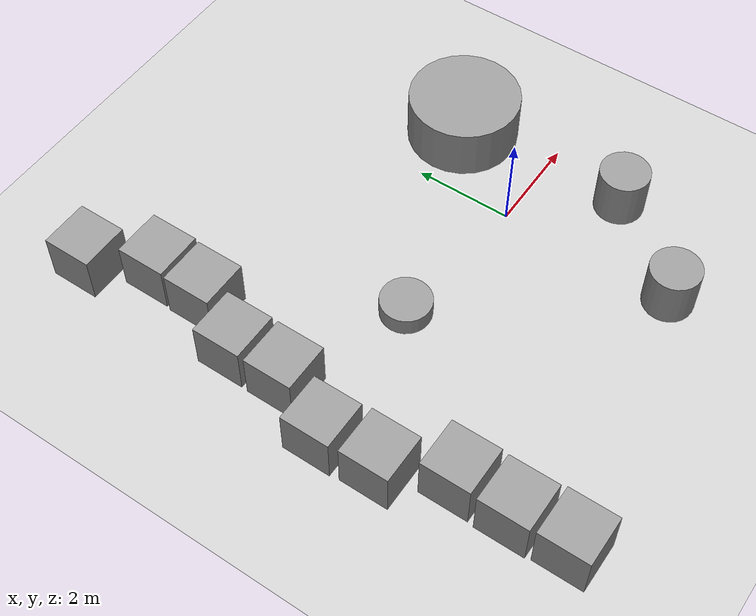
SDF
<sdf version="1.6">
 <world name="default">
  <light name="sun" type="directional">
   <pose>0 0 10 0 -0 0</pose>
   <diffuse>0.8 0.8 0.8 1</diffuse>
   <specular>0.1 0.1 0.1 1</specular>
   <attenuation>
    <range>1000</range>
    <constant>0.9</constant>
    <linear>0.01</linear>
    <quadratic>0.001</quadratic>
   </attenuation>
   <direction>-0.5 0.5 -1</direction>
  </light>
  <model name="ground_plane">
   <static>1</static>
   <link name="link">
    <collision name="collision">
     <geometry><plane><normal>0 0 1</normal><size>100 100</size></plane></geometry>
     <surface><friction><ode><mu>100</mu><mu2>50</mu2></ode></friction></surface>
    </collision>
    <visual name="visual">
     <cast_shadows>0</cast_shadows>
     <geometry><plane><normal>0 0 1</normal><size>100 100</size></plane></geometry>
     <material>
      <script><uri>file://media/materials/scripts/gazebo.material</uri><name>Gazebo/Grey</name></script>
     </material>
    </visual>
   </link>
  </model>
  <gravity>0 0 -9.8</gravity>
  <magnetic_field>6e-06 2.3e-05 -4.2e-05</magnetic_field>
  <atmosphere type="adiabatic"/>
  <physics name="default_physics" default="0" type="ode">
   <max_step_size>0.001</max_step_size>
   <real_time_factor>1</real_time_factor>
   <real_time_update_rate>1000</real_time_update_rate>
  </physics>
  <scene><ambient>0.4 0.4 0.4 1</ambient><background>0.7 0.7 0.7 1</background><shadows>1</shadows></scene>
  <spherical_coordinates>
   <surface_model>EARTH_WGS84</surface_model>
   <latitude_deg>0</latitude_deg>
   <longitude_deg>0</longitude_deg>
   <elevation>0</elevation>
   <heading_deg>0</heading_deg>
  </spherical_coordinates>
  <model name="unit_cylinder_0">
   <pose>1.50592 -1.65971 0.499994 -2e-06 -1e-06 0</pose>
   <link name="link">
    <inertial>
     <mass>1</mass>
     <inertia><ixx>0.145833</ixx><ixy>0</ixy><ixz>0</ixz><iyy>0.145833</iyy><iyz>0</iyz><izz>0.125</izz></inertia>
    </inertial>
    <collision name="collision">
     <geometry><cylinder><radius>0.5</radius><length>1</length></cylinder></geometry>
    </collision>
    <visual name="visual">
     <geometry><cylinder><radius>0.5</radius><length>1</length></cylinder></geometry>
     <material>
      <script><name>Gazebo/Grey</name><uri>file://media/materials/scripts/gazebo.material</uri></script>
     </material>
    </visual>
   </link>
  </model>
  <model name="unit_cylinder_1">
   <pose>1.41214 1.91088 0.454847 -0 -0 -2e-06</pose>
   <link name="link">
    <inertial>
     <mass>1</mass>
     <inertia><ixx>0.145833</ixx><ixy>0</ixy><ixz>0</ixz><iyy>0.145833</iyy><iyz>0</iyz><izz>0.125</izz></inertia>
    </inertial>
    <collision name="collision">
     <geometry><cylinder><radius>1.12984</radius><length>1.20839</length></cylinder></geometry>
    </collision>
    <visual name="visual">
     <geometry><cylinder><radius>1.12984</radius><length>1.20839</length></cylinder></geometry>
     <material>
      <script><name>Gazebo/Grey</name><uri>file://media/materials/scripts/gazebo.material</uri></script>
     </material>
    </visual>
   </link>
  </model>
  <model name="unit_cylinder_2">
   <pose>-3.18051 0.246522 0.499997 3e-06 1e-06 -0</pose>
   <link name="link">
    <inertial>
     <mass>1</mass>
     <inertia><ixx>0.145833</ixx><ixy>0</ixy><ixz>0</ixz><iyy>0.145833</iyy><iyz>0</iyz><izz>0.125</izz></inertia>
    </inertial>
    <collision name="collision">
     <geometry><cylinder><radius>0.5</radius><length>0.383294</length></cylinder></geometry>
    </collision>
    <visual name="visual">
     <geometry><cylinder><radius>0.5</radius><length>0.383294</length></cylinder></geometry>
     <material>
      <script><name>Gazebo/Grey</name><uri>file://media/materials/scripts/gazebo.material</uri></script>
     </material>
    </visual>
   </link>
  </model>
  <model name="unit_cylinder_3">
   <pose>-0.023501 -3.52909 0.499997 3e-06 1e-06 -0</pose>
   <link name="link">
    <inertial>
     <mass>1</mass>
     <inertia><ixx>0.145833</ixx><ixy>0</ixy><ixz>0</ixz><iyy>0.145833</iyy><iyz>0</iyz><izz>0.125</izz></inertia>
    </inertial>
    <collision name="collision">
     <geometry><cylinder><radius>0.5</radius><length>1</length></cylinder></geometry>
    </collision>
    <visual name="visual">
     <geometry><cylinder><radius>0.5</radius><length>1</length></cylinder></geometry>
     <material>
      <script><name>Gazebo/Grey</name><uri>file://media/materials/scripts/gazebo.material</uri></script>
     </material>
    </visual>
   </link>
  </model>
  <audio><device>default</device></audio>
  <model name="unit_box_0_clone">
   <pose>-5.52012 5.83657 0.499995 0 1e-05 0</pose>
   <link name="link">
    <inertial>
     <mass>1</mass>
     <inertia>
      <ixx>0.166667</ixx>
      <ixy>0</ixy>
      <ixz>0</ixz>
      <iyy>0.166667</iyy>
      <iyz>0</iyz>
      <izz>0.166667</izz>
     </inertia>
    </inertial>
    <collision name="collision"><geometry><box><size>0.999999 0.999996 1</size></box></geometry></collision>
    <visual name="visual">
     <geometry><box><size>0.999999 0.999996 1</size></box></geometry>
     <material>
      <script><name>Gazebo/Grey</name><uri>file://media/materials/scripts/gazebo.material</uri></script>
     </material>
    </visual>
   </link>
  </model>
  <model name="unit_box_0_clone_clone">
   <pose>-4.922 4.58737 0.499995 0 1e-05 0</pose>
   <link name="link">
    <inertial>
     <mass>1</mass>
     <inertia>
      <ixx>0.166667</ixx>
      <ixy>0</ixy>
      <ixz>0</ixz>
      <iyy>0.166667</iyy>
      <iyz>0</iyz>
      <izz>0.166667</izz>
     </inertia>
    </inertial>
    <collision name="collision"><geometry><box><size>0.999999 0.999996 1</size></box></geometry></collision>
    <visual name="visual">
     <geometry><box><size>0.999999 0.999996 1</size></box></geometry>
     <material>
      <script><name>Gazebo/Grey</name><uri>file://media/materials/scripts/gazebo.material</uri></script>
     </material>
    </visual>
   </link>
  </model>
  <model name="unit_box_0_clone_clone_0">
   <pose>-4.95343 3.49771 0.499989 0 1e-05 0</pose>
   <link name="link">
    <inertial>
     <mass>1</mass>
     <inertia>
      <ixx>0.166667</ixx>
      <ixy>0</ixy>
      <ixz>0</ixz>
      <iyy>0.166667</iyy>
      <iyz>0</iyz>
      <izz>0.166667</izz>
     </inertia>
    </inertial>
    <collision name="collision"><geometry><box><size>0.999999 0.999996 1</size></box></geometry></collision>
    <visual name="visual">
     <geometry><box><size>0.999999 0.999996 1</size></box></geometry>
     <material>
      <script><name>Gazebo/Grey</name><uri>file://media/materials/scripts/gazebo.material</uri></script>
     </material>
    </visual>
   </link>
  </model>
  <model name="unit_box_0_clone_clone_1">
   <pose>-5.53539 2.35628 0.499995 0 1e-05 0</pose>
   <link name="link">
    <inertial>
     <mass>1</mass>
     <inertia>
      <ixx>0.166667</ixx>
      <ixy>0</ixy>
      <ixz>0</ixz>
      <iyy>0.166667</iyy>
      <iyz>0</iyz>
      <izz>0.166667</izz>
     </inertia>
    </inertial>
    <collision name="collision"><geometry><box><size>0.999999 0.999996 1</size></box></geometry></collision>
    <visual name="visual">
     <geometry><box><size>0.999999 0.999996 1</size></box></geometry>
     <material>
      <script><name>Gazebo/Grey</name><uri>file://media/materials/scripts/gazebo.material</uri></script>
     </material>
    </visual>
   </link>
  </model>
  <model name="unit_box_0_clone_clone_2">
   <pose>-5.54449 1.2297 0.499995 0 1e-05 0</pose>
   <link name="link">
    <inertial>
     <mass>1</mass>
     <inertia>
      <ixx>0.166667</ixx>
      <ixy>0</ixy>
      <ixz>0</ixz>
      <iyy>0.166667</iyy>
      <iyz>0</iyz>
      <izz>0.166667</izz>
     </inertia>
    </inertial>
    <collision name="collision"><geometry><box><size>0.999999 0.999996 1</size></box></geometry></collision>
    <visual name="visual">
     <geometry><box><size>0.999999 0.999996 1</size></box></geometry>
     <material>
      <script><name>Gazebo/Grey</name><uri>file://media/materials/scripts/gazebo.material</uri></script>
     </material>
    </visual>
   </link>
  </model>
  <model name="unit_box_0_clone_clone_3">
   <pose>-6.10049 0.026772 0.500001 0 1e-05 0</pose>
   <link name="link">
    <inertial>
     <mass>1</mass>
     <inertia>
      <ixx>0.166667</ixx>
      <ixy>0</ixy>
      <ixz>0</ixz>
      <iyy>0.166667</iyy>
      <iyz>0</iyz>
      <izz>0.166667</izz>
     </inertia>
    </inertial>
    <collision name="collision"><geometry><box><size>0.999999 0.999996 1</size></box></geometry></collision>
    <visual name="visual">
     <geometry><box><size>0.999999 0.999996 1</size></box></geometry>
     <material>
      <script><name>Gazebo/Grey</name><uri>file://media/materials/scripts/gazebo.material</uri></script>
     </material>
    </visual>
   </link>
  </model>
  <model name="unit_box_0_clone_clone_4">
   <pose>-6.06448 -1.14881 0.500001 0 1e-05 0</pose>
   <link name="link">
    <inertial>
     <mass>1</mass>
     <inertia>
      <ixx>0.166667</ixx>
      <ixy>0</ixy>
      <ixz>0</ixz>
      <iyy>0.166667</iyy>
      <iyz>0</iyz>
      <izz>0.166667</izz>
     </inertia>
    </inertial>
    <collision name="collision"><geometry><box><size>0.999999 0.999996 1</size></box></geometry></collision>
    <visual name="visual">
     <geometry><box><size>0.999999 0.999996 1</size></box></geometry>
     <material>
      <script><name>Gazebo/Grey</name><uri>file://media/materials/scripts/gazebo.material</uri></script>
     </material>
    </visual>
   </link>
  </model>
  <model name="unit_box_0_clone_clone_5">
   <pose>-5.49445 -2.38127 0.499995 0 1e-05 0</pose>
   <link name="link">
    <inertial>
     <mass>1</mass>
     <inertia>
      <ixx>0.166667</ixx>
      <ixy>0</ixy>
      <ixz>0</ixz>
      <iyy>0.166667</iyy>
      <iyz>0</iyz>
      <izz>0.166667</izz>
     </inertia>
    </inertial>
    <collision name="collision"><geometry><box><size>0.999999 0.999996 1</size></box></geometry></collision>
    <visual name="visual">
     <geometry><box><size>0.999999 0.999996 1</size></box></geometry>
     <material>
      <script><name>Gazebo/Grey</name><uri>file://media/materials/scripts/gazebo.material</uri></script>
     </material>
    </visual>
   </link>
  </model>
  <model name="unit_box_0_clone_clone_6">
   <pose>-5.52068 -3.5053 0.499995 0 1e-05 0</pose>
   <link name="link">
    <inertial>
     <mass>1</mass>
     <inertia>
      <ixx>0.166667</ixx>
      <ixy>0</ixy>
      <ixz>0</ixz>
      <iyy>0.166667</iyy>
      <iyz>0</iyz>
      <izz>0.166667</izz>
     </inertia>
    </inertial>
    <collision name="collision"><geometry><box><size>0.999999 0.999996 1</size></box></geometry></collision>
    <visual name="visual">
     <geometry><box><size>0.999999 0.999996 1</size></box></geometry>
     <material>
      <script><name>Gazebo/Grey</name><uri>file://media/materials/scripts/gazebo.material</uri></script>
     </material>
    </visual>
   </link>
  </model>
  <model name="unit_box_0_clone_clone_7">
   <pose>-5.48542 -4.60149 0.499995 0 1e-05 0</pose>
   <link name="link">
    <inertial>
     <mass>1</mass>
     <inertia>
      <ixx>0.166667</ixx>
      <ixy>0</ixy>
      <ixz>0</ixz>
      <iyy>0.166667</iyy>
      <iyz>0</iyz>
      <izz>0.166667</izz>
     </inertia>
    </inertial>
    <collision name="collision"><geometry><box><size>0.999999 0.999996 1</size></box></geometry></collision>
    <visual name="visual">
     <geometry><box><size>0.999999 0.999996 1</size></box></geometry>
     <material>
      <script><name>Gazebo/Grey</name><uri>file://media/materials/scripts/gazebo.material</uri></script>
     </material>
    </visual>
   </link>
  </model>
 </world>
</sdf>
